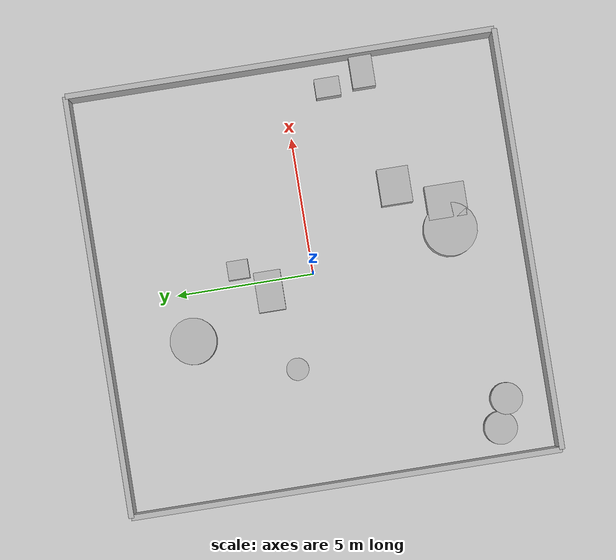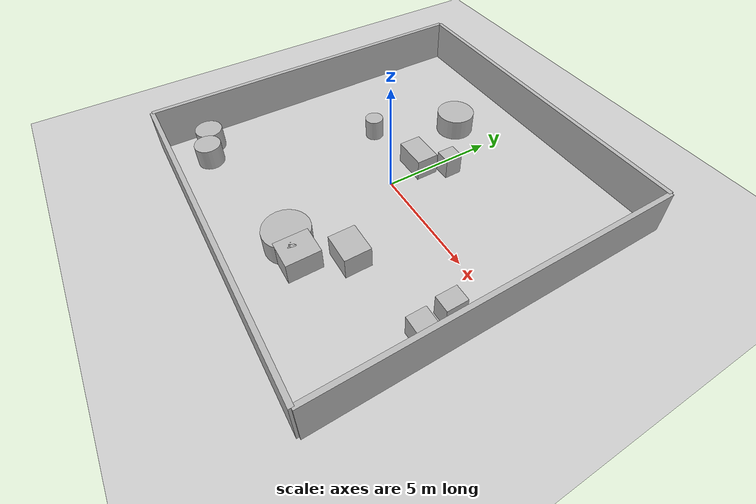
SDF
<?xml version="1.0"?>
<sdf version="1.6">
  <world name="env_8">

    <include><uri>model://ground_plane</uri></include>
    <include><uri>model://sun</uri></include>

    <!-- WALLS -->
    <model name="wall_north"><static>true</static><pose>0 7.788290575145808 1 0 0 0</pose>
      <link name="link"><collision name="collision">
        <geometry><box><size>15.264709134360292 0.2 2</size></box></geometry>
      </collision><visual name="visual">
        <geometry><box><size>15.264709134360292 0.2 2</size></box></geometry>
      </visual></link>
    </model>

    <model name="wall_south"><static>true</static><pose>0 -7.788290575145808 1 0 0 0</pose>
      <link name="link"><collision name="collision">
        <geometry><box><size>15.264709134360292 0.2 2</size></box></geometry>
      </collision><visual name="visual">
        <geometry><box><size>15.264709134360292 0.2 2</size></box></geometry>
      </visual></link>
    </model>

    <model name="wall_east"><static>true</static><pose>7.632354567180146 0 1 0 0 1.57</pose>
      <link name="link"><collision name="collision">
        <geometry><box><size>15.576581150291616 0.2 2</size></box></geometry>
      </collision><visual name="visual">
        <geometry><box><size>15.576581150291616 0.2 2</size></box></geometry>
      </visual></link>
    </model>

    <model name="wall_west"><static>true</static><pose>-7.632354567180146 0 1 0 0 1.57</pose>
      <link name="link"><collision name="collision">
        <geometry><box><size>15.576581150291616 0.2 2</size></box></geometry>
      </collision><visual name="visual">
        <geometry><box><size>15.576581150291616 0.2 2</size></box></geometry>
      </visual></link>
    </model>

    <!-- SENSOR -->

    <model name="lidar_sensor">
      <static>true</static>
      <pose>0.24620321452915928 -3.541985363725455 0.4 0 0 0</pose>
      <link name="link">
        <sensor name="lidar" type="ray">
          <pose>0 0 0 0 0 0</pose>
          <visualize>true</visualize>
          <always_on>true</always_on>
          <update_rate>10</update_rate>
          <ray>
            <scan><horizontal>
              <samples>720</samples>
              <resolution>1</resolution>
              <min_angle>-3.14159</min_angle>
              <max_angle>3.14159</max_angle>
            </horizontal></scan>
            <range><min>0.15</min><max>20.0</max><resolution>0.01</resolution></range>
          </ray>
          <plugin name="lidar_plugin" filename="liblidar_plugin.so"/>
        </sensor>
      </link>
    </model>

    <!-- OBSTACLES -->

    <model name="obstacle_0">
      <static>true</static>
      <pose>0.8110192404707366 -5.150085356579977 0.5 0 0 0</pose>
      <link name="link">
        <collision name="collision">
          <geometry><cylinder><radius>0.98</radius><length>1.0</length></cylinder></geometry>
        </collision>
        <visual name="visual">
          <geometry><cylinder><radius>0.98</radius><length>1.0</length></cylinder></geometry>
        </visual>
      </link>
    </model>

    <model name="obstacle_1">
      <static>true</static>
      <pose>6.582551538690037 -1.5751612968999584 0.5 0 0 0</pose>
      <link name="link">
        <collision name="collision">
          <geometry><box><size>0.7 0.91 1.0</size></box></geometry>
        </collision>
        <visual name="visual">
          <geometry><box><size>0.7 0.91 1.0</size></box></geometry>
        </visual>
      </link>
    </model>

    <model name="obstacle_2">
      <static>true</static>
      <pose>0.5692522167018215 2.6560714286613987 0.5 0 0 0</pose>
      <link name="link">
        <collision name="collision">
          <geometry><box><size>0.68 0.77 1.0</size></box></geometry>
        </collision>
        <visual name="visual">
          <geometry><box><size>0.68 0.77 1.0</size></box></geometry>
        </visual>
      </link>
    </model>

    <model name="obstacle_3">
      <static>true</static>
      <pose>2.674677288934216 -3.4114103168622045 0.5 0 0 0</pose>
      <link name="link">
        <collision name="collision">
          <geometry><box><size>1.33 1.14 1.0</size></box></geometry>
        </collision>
        <visual name="visual">
          <geometry><box><size>1.33 1.14 1.0</size></box></geometry>
        </visual>
      </link>
    </model>

    <model name="obstacle_4">
      <static>true</static>
      <pose>-5.54579890286624 -6.179282534813782 0.5 0 0 0</pose>
      <link name="link">
        <collision name="collision">
          <geometry><cylinder><radius>0.58</radius><length>1.0</length></cylinder></geometry>
        </collision>
        <visual name="visual">
          <geometry><cylinder><radius>0.58</radius><length>1.0</length></cylinder></geometry>
        </visual>
      </link>
    </model>

    <model name="obstacle_5">
      <static>true</static>
      <pose>6.949488503340058 -2.897691808845135 0.5 0 0 0</pose>
      <link name="link">
        <collision name="collision">
          <geometry><box><size>1.16 0.83 1.0</size></box></geometry>
        </collision>
        <visual name="visual">
          <geometry><box><size>1.16 0.83 1.0</size></box></geometry>
        </visual>
      </link>
    </model>

    <model name="obstacle_6">
      <static>true</static>
      <pose>-3.3162635746434908 1.092911158818282 0.5 0 0 0</pose>
      <link name="link">
        <collision name="collision">
          <geometry><cylinder><radius>0.41</radius><length>1.0</length></cylinder></geometry>
        </collision>
        <visual name="visual">
          <geometry><cylinder><radius>0.41</radius><length>1.0</length></cylinder></geometry>
        </visual>
      </link>
    </model>

    <model name="obstacle_7">
      <static>true</static>
      <pose>1.8476164527746946 -5.165867290510066 0.5 0 0 0</pose>
      <link name="link">
        <collision name="collision">
          <geometry><box><size>1.23 1.44 1.0</size></box></geometry>
        </collision>
        <visual name="visual">
          <geometry><box><size>1.23 1.44 1.0</size></box></geometry>
        </visual>
      </link>
    </model>

    <model name="obstacle_8">
      <static>true</static>
      <pose>-1.730589661984646 4.6505552133486425 0.5 0 0 0</pose>
      <link name="link">
        <collision name="collision">
          <geometry><cylinder><radius>0.85</radius><length>1.0</length></cylinder></geometry>
        </collision>
        <visual name="visual">
          <geometry><cylinder><radius>0.85</radius><length>1.0</length></cylinder></geometry>
        </visual>
      </link>
    </model>

    <model name="obstacle_9">
      <static>true</static>
      <pose>-0.3705826193271502 1.6531953048557444 0.5 0 0 0</pose>
      <link name="link">
        <collision name="collision">
          <geometry><box><size>1.46 0.98 1.0</size></box></geometry>
        </collision>
        <visual name="visual">
          <geometry><box><size>1.46 0.98 1.0</size></box></geometry>
        </visual>
      </link>
    </model>

    <model name="obstacle_10">
      <static>true</static>
      <pose>-6.558115238583073 -5.805255446120709 0.5 0 0 0</pose>
      <link name="link">
        <collision name="collision">
          <geometry><cylinder><radius>0.6</radius><length>1.0</length></cylinder></geometry>
        </collision>
        <visual name="visual">
          <geometry><cylinder><radius>0.6</radius><length>1.0</length></cylinder></geometry>
        </visual>
      </link>
    </model>

  </world>
</sdf>
